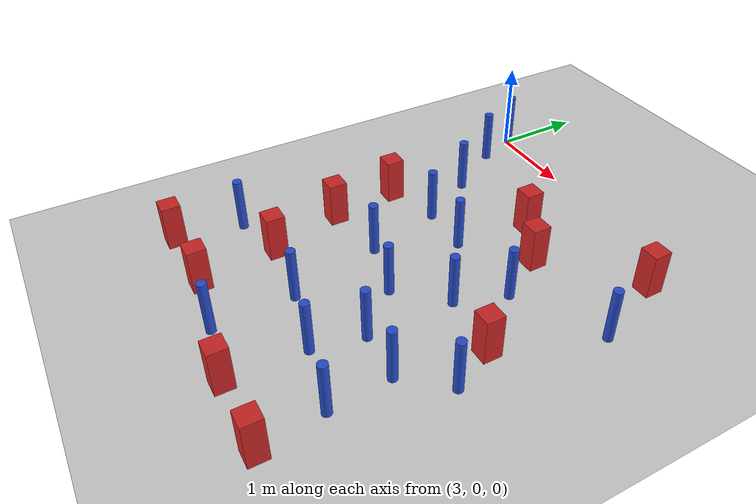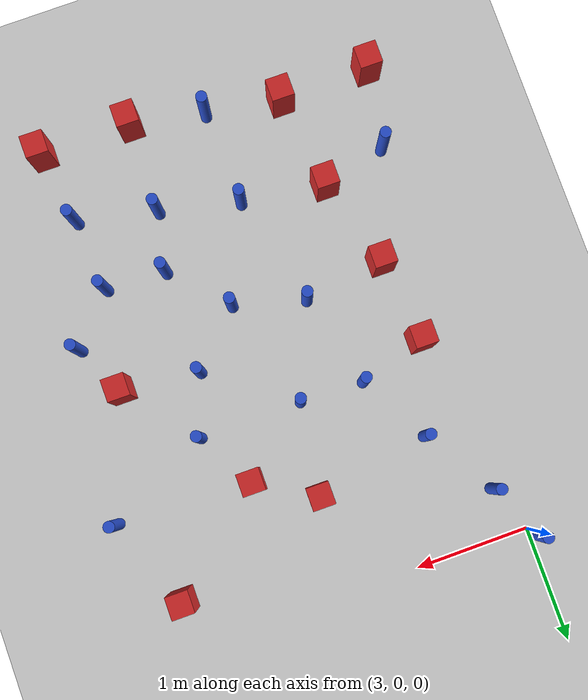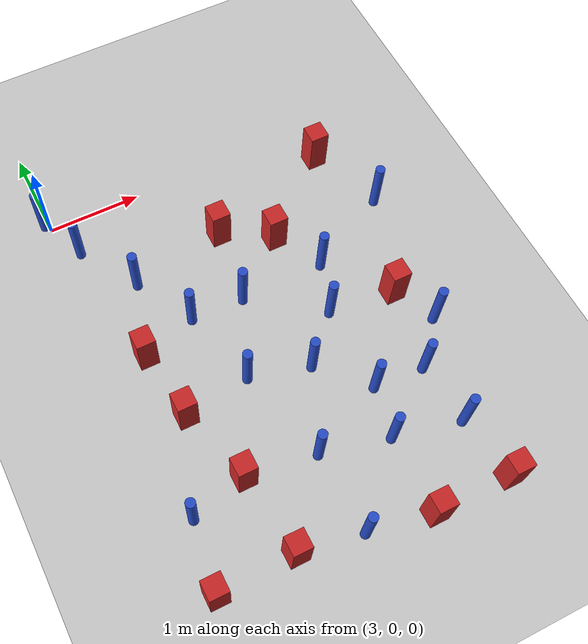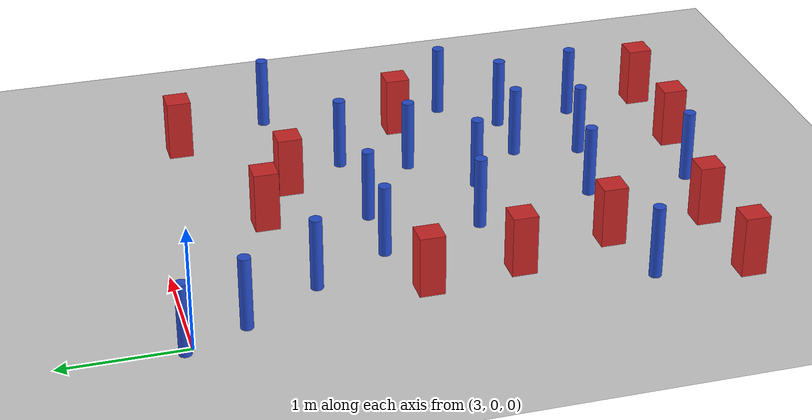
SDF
<sdf version="1.6">
 <world name="default">
  <model name="ground_plane">
   <static>1</static>
   <link name="link">
    <collision name="collision">
     <geometry><plane><normal>0 0 1</normal><size>100 100</size></plane></geometry>
     <surface><friction><ode><mu>100</mu><mu2>50</mu2></ode></friction></surface>
    </collision>
    <visual name="visual">
     <cast_shadows>0</cast_shadows>
     <geometry><plane><normal>0 0 1</normal><size>100 100</size></plane></geometry>
     <material>
      <ambient>1.0 1.0 1.0 1.0</ambient>
      <diffuse>0.8 0.8 0.8 1.0</diffuse>
      <specular>0.01 0.01 0.01 1.000000</specular>
     </material>
    </visual>
   </link>
  </model>
  <model name="pole_obstacle7">
   <static>true</static>
   <pose>5.74011570773 -3.17325462486 -9.47619616065e-06 5.49618799738e-07 2.36310414051e-07 -1.55090534805e-07</pose>
   <link name="link">
    <pose>0 0 0.3 0 -0 0</pose>
    <inertial>
     <mass>1</mass>
     <inertia><ixx>0.145833</ixx><ixy>0</ixy><ixz>0</ixz><iyy>0.145833</iyy><iyz>0</iyz><izz>0.125</izz></inertia>
    </inertial>
    <collision name="collision">
     <geometry><cylinder><radius>0.05</radius><length>.6</length></cylinder></geometry>
    </collision>
    <visual name="visual">
     <geometry><cylinder><radius>0.05</radius><length>.6</length></cylinder></geometry>
     <material>
      <script><name>Gazebo/Blue</name><uri>file://media/materials/scripts/gazebo.material</uri></script>
     </material>
    </visual>
   </link>
  </model>
  <model name="square_post_obstacle10">
   <static>true</static>
   <pose>4.5871182132 -0.866815643466 -6.11067671241e-07 -5.50515727128e-06 -8.79689657224e-07 2.37013304536e-05</pose>
   <link name="link">
    <pose>0 0 0.25 0 -0 0</pose>
    <inertial>
     <mass>100</mass>
     <inertia>
      <ixx>0.166667</ixx>
      <ixy>0</ixy>
      <ixz>0</ixz>
      <iyy>0.166667</iyy>
      <iyz>0</iyz>
      <izz>0.166667</izz>
     </inertia>
    </inertial>
    <collision name="collision"><geometry><box><size>.2 .2 .5</size></box></geometry></collision>
    <visual name="visual">
     <geometry><box><size>.2 .2 .5</size></box></geometry>
     <material>
      <script><name>Gazebo/Red</name><uri>file://media/materials/scripts/gazebo.material</uri></script>
     </material>
    </visual>
   </link>
  </model>
  <model name="pole_obstacle12">
   <static>true</static>
   <pose>4.37692634435 -3.51146106822 -9.47619616065e-06 5.49618799738e-07 2.36310414051e-07 -1.55090534805e-07</pose>
   <link name="link">
    <pose>0 0 0.3 0 -0 0</pose>
    <inertial>
     <mass>1</mass>
     <inertia><ixx>0.145833</ixx><ixy>0</ixy><ixz>0</ixz><iyy>0.145833</iyy><iyz>0</iyz><izz>0.125</izz></inertia>
    </inertial>
    <collision name="collision">
     <geometry><cylinder><radius>0.05</radius><length>.6</length></cylinder></geometry>
    </collision>
    <visual name="visual">
     <geometry><cylinder><radius>0.05</radius><length>.6</length></cylinder></geometry>
     <material>
      <script><name>Gazebo/Blue</name><uri>file://media/materials/scripts/gazebo.material</uri></script>
     </material>
    </visual>
   </link>
  </model>
  <model name="square_post_obstacle30">
   <static>true</static>
   <pose>5.09484157151 -1.17074148817 -6.11067671241e-07 -5.50515727128e-06 -8.79689657224e-07 2.37013304536e-05</pose>
   <link name="link">
    <pose>0 0 0.25 0 -0 0</pose>
    <inertial>
     <mass>100</mass>
     <inertia>
      <ixx>0.166667</ixx>
      <ixy>0</ixy>
      <ixz>0</ixz>
      <iyy>0.166667</iyy>
      <iyz>0</iyz>
      <izz>0.166667</izz>
     </inertia>
    </inertial>
    <collision name="collision"><geometry><box><size>.2 .2 .5</size></box></geometry></collision>
    <visual name="visual">
     <geometry><box><size>.2 .2 .5</size></box></geometry>
     <material>
      <script><name>Gazebo/Red</name><uri>file://media/materials/scripts/gazebo.material</uri></script>
     </material>
    </visual>
   </link>
  </model>
  <model name="square_post_obstacle39">
   <static>true</static>
   <pose>2.93482607612 -4.27858987486 -6.11067671241e-07 -5.50515727128e-06 -8.79689657224e-07 2.37013304536e-05</pose>
   <link name="link">
    <pose>0 0 0.25 0 -0 0</pose>
    <inertial>
     <mass>100</mass>
     <inertia>
      <ixx>0.166667</ixx>
      <ixy>0</ixy>
      <ixz>0</ixz>
      <iyy>0.166667</iyy>
      <iyz>0</iyz>
      <izz>0.166667</izz>
     </inertia>
    </inertial>
    <collision name="collision"><geometry><box><size>.2 .2 .5</size></box></geometry></collision>
    <visual name="visual">
     <geometry><box><size>.2 .2 .5</size></box></geometry>
     <material>
      <script><name>Gazebo/Red</name><uri>file://media/materials/scripts/gazebo.material</uri></script>
     </material>
    </visual>
   </link>
  </model>
  <model name="square_post_obstacle58">
   <static>true</static>
   <pose>5.89812574175 -2.29102429211 -6.11067671241e-07 -5.50515727128e-06 -8.79689657224e-07 2.37013304536e-05</pose>
   <link name="link">
    <pose>0 0 0.25 0 -0 0</pose>
    <inertial>
     <mass>100</mass>
     <inertia>
      <ixx>0.166667</ixx>
      <ixy>0</ixy>
      <ixz>0</ixz>
      <iyy>0.166667</iyy>
      <iyz>0</iyz>
      <izz>0.166667</izz>
     </inertia>
    </inertial>
    <collision name="collision"><geometry><box><size>.2 .2 .5</size></box></geometry></collision>
    <visual name="visual">
     <geometry><box><size>.2 .2 .5</size></box></geometry>
     <material>
      <script><name>Gazebo/Red</name><uri>file://media/materials/scripts/gazebo.material</uri></script>
     </material>
    </visual>
   </link>
  </model>
  <model name="pole_obstacle68">
   <static>true</static>
   <pose>5.2035490356 -2.21163142448 -9.47619616065e-06 5.49618799738e-07 2.36310414051e-07 -1.55090534805e-07</pose>
   <link name="link">
    <pose>0 0 0.3 0 -0 0</pose>
    <inertial>
     <mass>1</mass>
     <inertia><ixx>0.145833</ixx><ixy>0</ixy><ixz>0</ixz><iyy>0.145833</iyy><iyz>0</iyz><izz>0.125</izz></inertia>
    </inertial>
    <collision name="collision">
     <geometry><cylinder><radius>0.05</radius><length>.6</length></cylinder></geometry>
    </collision>
    <visual name="visual">
     <geometry><cylinder><radius>0.05</radius><length>.6</length></cylinder></geometry>
     <material>
      <script><name>Gazebo/Blue</name><uri>file://media/materials/scripts/gazebo.material</uri></script>
     </material>
    </visual>
   </link>
  </model>
  <model name="pole_obstacle69">
   <static>true</static>
   <pose>5.08811542425 -3.67580855136 -9.47619616065e-06 5.49618799738e-07 2.36310414051e-07 -1.55090534805e-07</pose>
   <link name="link">
    <pose>0 0 0.3 0 -0 0</pose>
    <inertial>
     <mass>1</mass>
     <inertia><ixx>0.145833</ixx><ixy>0</ixy><ixz>0</ixz><iyy>0.145833</iyy><iyz>0</iyz><izz>0.125</izz></inertia>
    </inertial>
    <collision name="collision">
     <geometry><cylinder><radius>0.05</radius><length>.6</length></cylinder></geometry>
    </collision>
    <visual name="visual">
     <geometry><cylinder><radius>0.05</radius><length>.6</length></cylinder></geometry>
     <material>
      <script><name>Gazebo/Blue</name><uri>file://media/materials/scripts/gazebo.material</uri></script>
     </material>
    </visual>
   </link>
  </model>
  <model name="pole_obstacle80">
   <static>true</static>
   <pose>3.17423576549 -0.427183723087 -9.47619616065e-06 5.49618799738e-07 2.36310414074e-07 -1.55090534794e-07</pose>
   <link name="link">
    <pose>0 0 0.3 0 -0 0</pose>
    <inertial>
     <mass>1</mass>
     <inertia><ixx>0.145833</ixx><ixy>0</ixy><ixz>0</ixz><iyy>0.145833</iyy><iyz>0</iyz><izz>0.125</izz></inertia>
    </inertial>
    <collision name="collision">
     <geometry><cylinder><radius>0.05</radius><length>.6</length></cylinder></geometry>
    </collision>
    <visual name="visual">
     <geometry><cylinder><radius>0.05</radius><length>.6</length></cylinder></geometry>
     <material>
      <script><name>Gazebo/Blue</name><uri>file://media/materials/scripts/gazebo.material</uri></script>
     </material>
    </visual>
   </link>
  </model>
  <model name="pole_obstacle84">
   <static>true</static>
   <pose>3.56374168596 -1.04376437411 -9.47619616065e-06 5.49618799738e-07 2.3631041407e-07 -1.55090534797e-07</pose>
   <link name="link">
    <pose>0 0 0.3 0 -0 0</pose>
    <inertial>
     <mass>1</mass>
     <inertia><ixx>0.145833</ixx><ixy>0</ixy><ixz>0</ixz><iyy>0.145833</iyy><iyz>0</iyz><izz>0.125</izz></inertia>
    </inertial>
    <collision name="collision">
     <geometry><cylinder><radius>0.05</radius><length>.6</length></cylinder></geometry>
    </collision>
    <visual name="visual">
     <geometry><cylinder><radius>0.05</radius><length>.6</length></cylinder></geometry>
     <material>
      <script><name>Gazebo/Blue</name><uri>file://media/materials/scripts/gazebo.material</uri></script>
     </material>
    </visual>
   </link>
  </model>
  <model name="pole_obstacle86">
   <static>true</static>
   <pose>4.12236139312 -2.50142660109 -9.47619616065e-06 5.49618799738e-07 2.36310414051e-07 -1.55090534805e-07</pose>
   <link name="link">
    <pose>0 0 0.3 0 -0 0</pose>
    <inertial>
     <mass>1</mass>
     <inertia><ixx>0.145833</ixx><ixy>0</ixy><ixz>0</ixz><iyy>0.145833</iyy><iyz>0</iyz><izz>0.125</izz></inertia>
    </inertial>
    <collision name="collision">
     <geometry><cylinder><radius>0.05</radius><length>.6</length></cylinder></geometry>
    </collision>
    <visual name="visual">
     <geometry><cylinder><radius>0.05</radius><length>.6</length></cylinder></geometry>
     <material>
      <script><name>Gazebo/Blue</name><uri>file://media/materials/scripts/gazebo.material</uri></script>
     </material>
    </visual>
   </link>
  </model>
  <model name="pole_obstacle92">
   <static>true</static>
   <pose>4.75399418786 -2.66989604603 -9.47619616065e-06 5.49618799738e-07 2.36310414051e-07 -1.55090534805e-07</pose>
   <link name="link">
    <pose>0 0 0.3 0 -0 0</pose>
    <inertial>
     <mass>1</mass>
     <inertia><ixx>0.145833</ixx><ixy>0</ixy><ixz>0</ixz><iyy>0.145833</iyy><iyz>0</iyz><izz>0.125</izz></inertia>
    </inertial>
    <collision name="collision">
     <geometry><cylinder><radius>0.05</radius><length>.6</length></cylinder></geometry>
    </collision>
    <visual name="visual">
     <geometry><cylinder><radius>0.05</radius><length>.6</length></cylinder></geometry>
     <material>
      <script><name>Gazebo/Blue</name><uri>file://media/materials/scripts/gazebo.material</uri></script>
     </material>
    </visual>
   </link>
  </model>
  <model name="pole_obstacle94">
   <static>true</static>
   <pose>6.12464798968 -2.74110601947 -9.47619616065e-06 5.49618799738e-07 2.36310414051e-07 -1.55090534805e-07</pose>
   <link name="link">
    <pose>0 0 0.3 0 -0 0</pose>
    <inertial>
     <mass>1</mass>
     <inertia><ixx>0.145833</ixx><ixy>0</ixy><ixz>0</ixz><iyy>0.145833</iyy><iyz>0</iyz><izz>0.125</izz></inertia>
    </inertial>
    <collision name="collision">
     <geometry><cylinder><radius>0.05</radius><length>.6</length></cylinder></geometry>
    </collision>
    <visual name="visual">
     <geometry><cylinder><radius>0.05</radius><length>.6</length></cylinder></geometry>
     <material>
      <script><name>Gazebo/Blue</name><uri>file://media/materials/scripts/gazebo.material</uri></script>
     </material>
    </visual>
   </link>
  </model>
  <model name="square_post_obstacle84">
   <static>true</static>
   <pose>3.63636659415 -3.41041465702 -6.11067671241e-07 -5.50515727128e-06 -8.79689657224e-07 2.37013304536e-05</pose>
   <link name="link">
    <pose>0 0 0.25 0 -0 0</pose>
    <inertial>
     <mass>100</mass>
     <inertia>
      <ixx>0.166667</ixx>
      <ixy>0</ixy>
      <ixz>0</ixz>
      <iyy>0.166667</iyy>
      <iyz>0</iyz>
      <izz>0.166667</izz>
     </inertia>
    </inertial>
    <collision name="collision"><geometry><box><size>.2 .2 .5</size></box></geometry></collision>
    <visual name="visual">
     <geometry><box><size>.2 .2 .5</size></box></geometry>
     <material>
      <script><name>Gazebo/Red</name><uri>file://media/materials/scripts/gazebo.material</uri></script>
     </material>
    </visual>
   </link>
  </model>
  <model name="pole_obstacle120">
   <static>true</static>
   <pose>4.4089110404 -4.37202703897 -9.47619616065e-06 5.49618799737e-07 2.36310414037e-07 -1.55090534814e-07</pose>
   <link name="link">
    <pose>0 0 0.3 0 -0 0</pose>
    <inertial>
     <mass>1</mass>
     <inertia><ixx>0.145833</ixx><ixy>0</ixy><ixz>0</ixz><iyy>0.145833</iyy><iyz>0</iyz><izz>0.125</izz></inertia>
    </inertial>
    <collision name="collision">
     <geometry><cylinder><radius>0.05</radius><length>.6</length></cylinder></geometry>
    </collision>
    <visual name="visual">
     <geometry><cylinder><radius>0.05</radius><length>.6</length></cylinder></geometry>
     <material>
      <script><name>Gazebo/Blue</name><uri>file://media/materials/scripts/gazebo.material</uri></script>
     </material>
    </visual>
   </link>
  </model>
  <model name="square_post_obstacle123">
   <static>true</static>
   <pose>3.40715910442 -2.60395416076 -6.11067671241e-07 -5.50515727128e-06 -8.79689657224e-07 2.37013304536e-05</pose>
   <link name="link">
    <pose>0 0 0.25 0 -0 0</pose>
    <inertial>
     <mass>100</mass>
     <inertia>
      <ixx>0.166667</ixx>
      <ixy>0</ixy>
      <ixz>0</ixz>
      <iyy>0.166667</iyy>
      <iyz>0</iyz>
      <izz>0.166667</izz>
     </inertia>
    </inertial>
    <collision name="collision"><geometry><box><size>.2 .2 .5</size></box></geometry></collision>
    <visual name="visual">
     <geometry><box><size>.2 .2 .5</size></box></geometry>
     <material>
      <script><name>Gazebo/Red</name><uri>file://media/materials/scripts/gazebo.material</uri></script>
     </material>
    </visual>
   </link>
  </model>
  <model name="pole_obstacle142">
   <static>true</static>
   <pose>5.2004864819 -3.14313990131 -9.47619616065e-06 5.49618799738e-07 2.36310414051e-07 -1.55090534805e-07</pose>
   <link name="link">
    <pose>0 0 0.3 0 -0 0</pose>
    <inertial>
     <mass>1</mass>
     <inertia><ixx>0.145833</ixx><ixy>0</ixy><ixz>0</ixz><iyy>0.145833</iyy><iyz>0</iyz><izz>0.125</izz></inertia>
    </inertial>
    <collision name="collision">
     <geometry><cylinder><radius>0.05</radius><length>.6</length></cylinder></geometry>
    </collision>
    <visual name="visual">
     <geometry><cylinder><radius>0.05</radius><length>.6</length></cylinder></geometry>
     <material>
      <script><name>Gazebo/Blue</name><uri>file://media/materials/scripts/gazebo.material</uri></script>
     </material>
    </visual>
   </link>
  </model>
  <model name="square_post_obstacle137">
   <static>true</static>
   <pose>3.31817755528 -1.84903389752 -6.11067671241e-07 -5.50515727128e-06 -8.79689657224e-07 2.37013304536e-05</pose>
   <link name="link">
    <pose>0 0 0.25 0 -0 0</pose>
    <inertial>
     <mass>100</mass>
     <inertia>
      <ixx>0.166667</ixx>
      <ixy>0</ixy>
      <ixz>0</ixz>
      <iyy>0.166667</iyy>
      <iyz>0</iyz>
      <izz>0.166667</izz>
     </inertia>
    </inertial>
    <collision name="collision"><geometry><box><size>.2 .2 .5</size></box></geometry></collision>
    <visual name="visual">
     <geometry><box><size>.2 .2 .5</size></box></geometry>
     <material>
      <script><name>Gazebo/Red</name><uri>file://media/materials/scripts/gazebo.material</uri></script>
     </material>
    </visual>
   </link>
  </model>
  <model name="pole_obstacle162">
   <static>true</static>
   <pose>2.95524875526 0.0659386893991 -9.4761961606e-06 5.49618799729e-07 2.36310414001e-07 -1.55090534824e-07</pose>
   <link name="link">
    <pose>0 0 0.3 0 -0 0</pose>
    <inertial>
     <mass>1</mass>
     <inertia><ixx>0.145833</ixx><ixy>0</ixy><ixz>0</ixz><iyy>0.145833</iyy><iyz>0</iyz><izz>0.125</izz></inertia>
    </inertial>
    <collision name="collision">
     <geometry><cylinder><radius>0.05</radius><length>.6</length></cylinder></geometry>
    </collision>
    <visual name="visual">
     <geometry><cylinder><radius>0.05</radius><length>.6</length></cylinder></geometry>
     <material>
      <script><name>Gazebo/Blue</name><uri>file://media/materials/scripts/gazebo.material</uri></script>
     </material>
    </visual>
   </link>
  </model>
  <model name="pole_obstacle165">
   <static>true</static>
   <pose>4.47390983658 -1.681089528 -9.47619616065e-06 5.49618799738e-07 2.36310414071e-07 -1.55090534796e-07</pose>
   <link name="link">
    <pose>0 0 0.3 0 -0 0</pose>
    <inertial>
     <mass>1</mass>
     <inertia><ixx>0.145833</ixx><ixy>0</ixy><ixz>0</ixz><iyy>0.145833</iyy><iyz>0</iyz><izz>0.125</izz></inertia>
    </inertial>
    <collision name="collision">
     <geometry><cylinder><radius>0.05</radius><length>.6</length></cylinder></geometry>
    </collision>
    <visual name="visual">
     <geometry><cylinder><radius>0.05</radius><length>.6</length></cylinder></geometry>
     <material>
      <script><name>Gazebo/Blue</name><uri>file://media/materials/scripts/gazebo.material</uri></script>
     </material>
    </visual>
   </link>
  </model>
  <model name="square_post_obstacle185">
   <static>true</static>
   <pose>5.88656362062 -4.49320100275 -6.11067671241e-07 -5.50515727128e-06 -8.79689657224e-07 2.37013304536e-05</pose>
   <link name="link">
    <pose>0 0 0.25 0 -0 0</pose>
    <inertial>
     <mass>100</mass>
     <inertia>
      <ixx>0.166667</ixx>
      <ixy>0</ixy>
      <ixz>0</ixz>
      <iyy>0.166667</iyy>
      <iyz>0</iyz>
      <izz>0.166667</izz>
     </inertia>
    </inertial>
    <collision name="collision"><geometry><box><size>.2 .2 .5</size></box></geometry></collision>
    <visual name="visual">
     <geometry><box><size>.2 .2 .5</size></box></geometry>
     <material>
      <script><name>Gazebo/Red</name><uri>file://media/materials/scripts/gazebo.material</uri></script>
     </material>
    </visual>
   </link>
  </model>
  <model name="square_post_obstacle188">
   <static>true</static>
   <pose>5.07437966554 -4.49093543063 -6.11067671241e-07 -5.50515727128e-06 -8.79689657224e-07 2.37013304536e-05</pose>
   <link name="link">
    <pose>0 0 0.25 0 -0 0</pose>
    <inertial>
     <mass>100</mass>
     <inertia>
      <ixx>0.166667</ixx>
      <ixy>0</ixy>
      <ixz>0</ixz>
      <iyy>0.166667</iyy>
      <iyz>0</iyz>
      <izz>0.166667</izz>
     </inertia>
    </inertial>
    <collision name="collision"><geometry><box><size>.2 .2 .5</size></box></geometry></collision>
    <visual name="visual">
     <geometry><box><size>.2 .2 .5</size></box></geometry>
     <material>
      <script><name>Gazebo/Red</name><uri>file://media/materials/scripts/gazebo.material</uri></script>
     </material>
    </visual>
   </link>
  </model>
  <model name="pole_obstacle192">
   <static>true</static>
   <pose>5.38892852048 -1.67375539383 -9.47619616065e-06 5.49618799738e-07 2.36310414071e-07 -1.55090534796e-07</pose>
   <link name="link">
    <pose>0 0 0.3 0 -0 0</pose>
    <inertial>
     <mass>1</mass>
     <inertia><ixx>0.145833</ixx><ixy>0</ixy><ixz>0</ixz><iyy>0.145833</iyy><iyz>0</iyz><izz>0.125</izz></inertia>
    </inertial>
    <collision name="collision">
     <geometry><cylinder><radius>0.05</radius><length>.6</length></cylinder></geometry>
    </collision>
    <visual name="visual">
     <geometry><cylinder><radius>0.05</radius><length>.6</length></cylinder></geometry>
     <material>
      <script><name>Gazebo/Blue</name><uri>file://media/materials/scripts/gazebo.material</uri></script>
     </material>
    </visual>
   </link>
  </model>
  <model name="pole_obstacle198">
   <static>true</static>
   <pose>5.79518384165 -3.82782737832 -9.47619616065e-06 5.49618799738e-07 2.36310414051e-07 -1.55090534805e-07</pose>
   <link name="link">
    <pose>0 0 0.3 0 -0 0</pose>
    <inertial>
     <mass>1</mass>
     <inertia><ixx>0.145833</ixx><ixy>0</ixy><ixz>0</ixz><iyy>0.145833</iyy><iyz>0</iyz><izz>0.125</izz></inertia>
    </inertial>
    <collision name="collision">
     <geometry><cylinder><radius>0.05</radius><length>.6</length></cylinder></geometry>
    </collision>
    <visual name="visual">
     <geometry><cylinder><radius>0.05</radius><length>.6</length></cylinder></geometry>
     <material>
      <script><name>Gazebo/Blue</name><uri>file://media/materials/scripts/gazebo.material</uri></script>
     </material>
    </visual>
   </link>
  </model>
  <model name="pole_obstacle215">
   <static>true</static>
   <pose>6.29854118928 -1.21464778355 -9.47619616065e-06 5.49618799738e-07 2.36310414071e-07 -1.55090534796e-07</pose>
   <link name="link">
    <pose>0 0 0.3 0 -0 0</pose>
    <inertial>
     <mass>1</mass>
     <inertia><ixx>0.145833</ixx><ixy>0</ixy><ixz>0</ixz><iyy>0.145833</iyy><iyz>0</iyz><izz>0.125</izz></inertia>
    </inertial>
    <collision name="collision">
     <geometry><cylinder><radius>0.05</radius><length>.6</length></cylinder></geometry>
    </collision>
    <visual name="visual">
     <geometry><cylinder><radius>0.05</radius><length>.6</length></cylinder></geometry>
     <material>
      <script><name>Gazebo/Blue</name><uri>file://media/materials/scripts/gazebo.material</uri></script>
     </material>
    </visual>
   </link>
  </model>
  <model name="pole_obstacle216">
   <static>true</static>
   <pose>3.90407694025 -1.66319858903 -9.47619616065e-06 5.49618799737e-07 2.36310414072e-07 -1.55090534793e-07</pose>
   <link name="link">
    <pose>0 0 0.3 0 -0 0</pose>
    <inertial>
     <mass>1</mass>
     <inertia><ixx>0.145833</ixx><ixy>0</ixy><ixz>0</ixz><iyy>0.145833</iyy><iyz>0</iyz><izz>0.125</izz></inertia>
    </inertial>
    <collision name="collision">
     <geometry><cylinder><radius>0.05</radius><length>.6</length></cylinder></geometry>
    </collision>
    <visual name="visual">
     <geometry><cylinder><radius>0.05</radius><length>.6</length></cylinder></geometry>
     <material>
      <script><name>Gazebo/Blue</name><uri>file://media/materials/scripts/gazebo.material</uri></script>
     </material>
    </visual>
   </link>
  </model>
  <model name="pole_obstacle221">
   <static>true</static>
   <pose>3.04425359736 -3.5592311016 -9.47619616065e-06 5.49618799737e-07 2.36310414051e-07 -1.55090534807e-07</pose>
   <link name="link">
    <pose>0 0 0.3 0 -0 0</pose>
    <inertial>
     <mass>1</mass>
     <inertia><ixx>0.145833</ixx><ixy>0</ixy><ixz>0</ixz><iyy>0.145833</iyy><iyz>0</iyz><izz>0.125</izz></inertia>
    </inertial>
    <collision name="collision">
     <geometry><cylinder><radius>0.05</radius><length>.6</length></cylinder></geometry>
    </collision>
    <visual name="visual">
     <geometry><cylinder><radius>0.05</radius><length>.6</length></cylinder></geometry>
     <material>
      <script><name>Gazebo/Blue</name><uri>file://media/materials/scripts/gazebo.material</uri></script>
     </material>
    </visual>
   </link>
  </model>
  <model name="square_post_obstacle207">
   <static>true</static>
   <pose>5.97294131063 -0.420501371522 -6.11067671241e-07 -5.50515727128e-06 -8.79689657224e-07 2.37013304536e-05</pose>
   <link name="link">
    <pose>0 0 0.25 0 -0 0</pose>
    <inertial>
     <mass>100</mass>
     <inertia>
      <ixx>0.166667</ixx>
      <ixy>0</ixy>
      <ixz>0</ixz>
      <iyy>0.166667</iyy>
      <iyz>0</iyz>
      <izz>0.166667</izz>
     </inertia>
    </inertial>
    <collision name="collision"><geometry><box><size>.2 .2 .5</size></box></geometry></collision>
    <visual name="visual">
     <geometry><box><size>.2 .2 .5</size></box></geometry>
     <material>
      <script><name>Gazebo/Red</name><uri>file://media/materials/scripts/gazebo.material</uri></script>
     </material>
    </visual>
   </link>
  </model>
  <model name="square_post_obstacle218">
   <static>true</static>
   <pose>3.74526229046 -4.25987095471 -6.11067671241e-07 -5.50515727128e-06 -8.79689657224e-07 2.37013304536e-05</pose>
   <link name="link">
    <pose>0 0 0.25 0 -0 0</pose>
    <inertial>
     <mass>100</mass>
     <inertia>
      <ixx>0.166667</ixx>
      <ixy>0</ixy>
      <ixz>0</ixz>
      <iyy>0.166667</iyy>
      <iyz>0</iyz>
      <izz>0.166667</izz>
     </inertia>
    </inertial>
    <collision name="collision"><geometry><box><size>.2 .2 .5</size></box></geometry></collision>
    <visual name="visual">
     <geometry><box><size>.2 .2 .5</size></box></geometry>
     <material>
      <script><name>Gazebo/Red</name><uri>file://media/materials/scripts/gazebo.material</uri></script>
     </material>
    </visual>
   </link>
  </model>
 </world>
</sdf>
